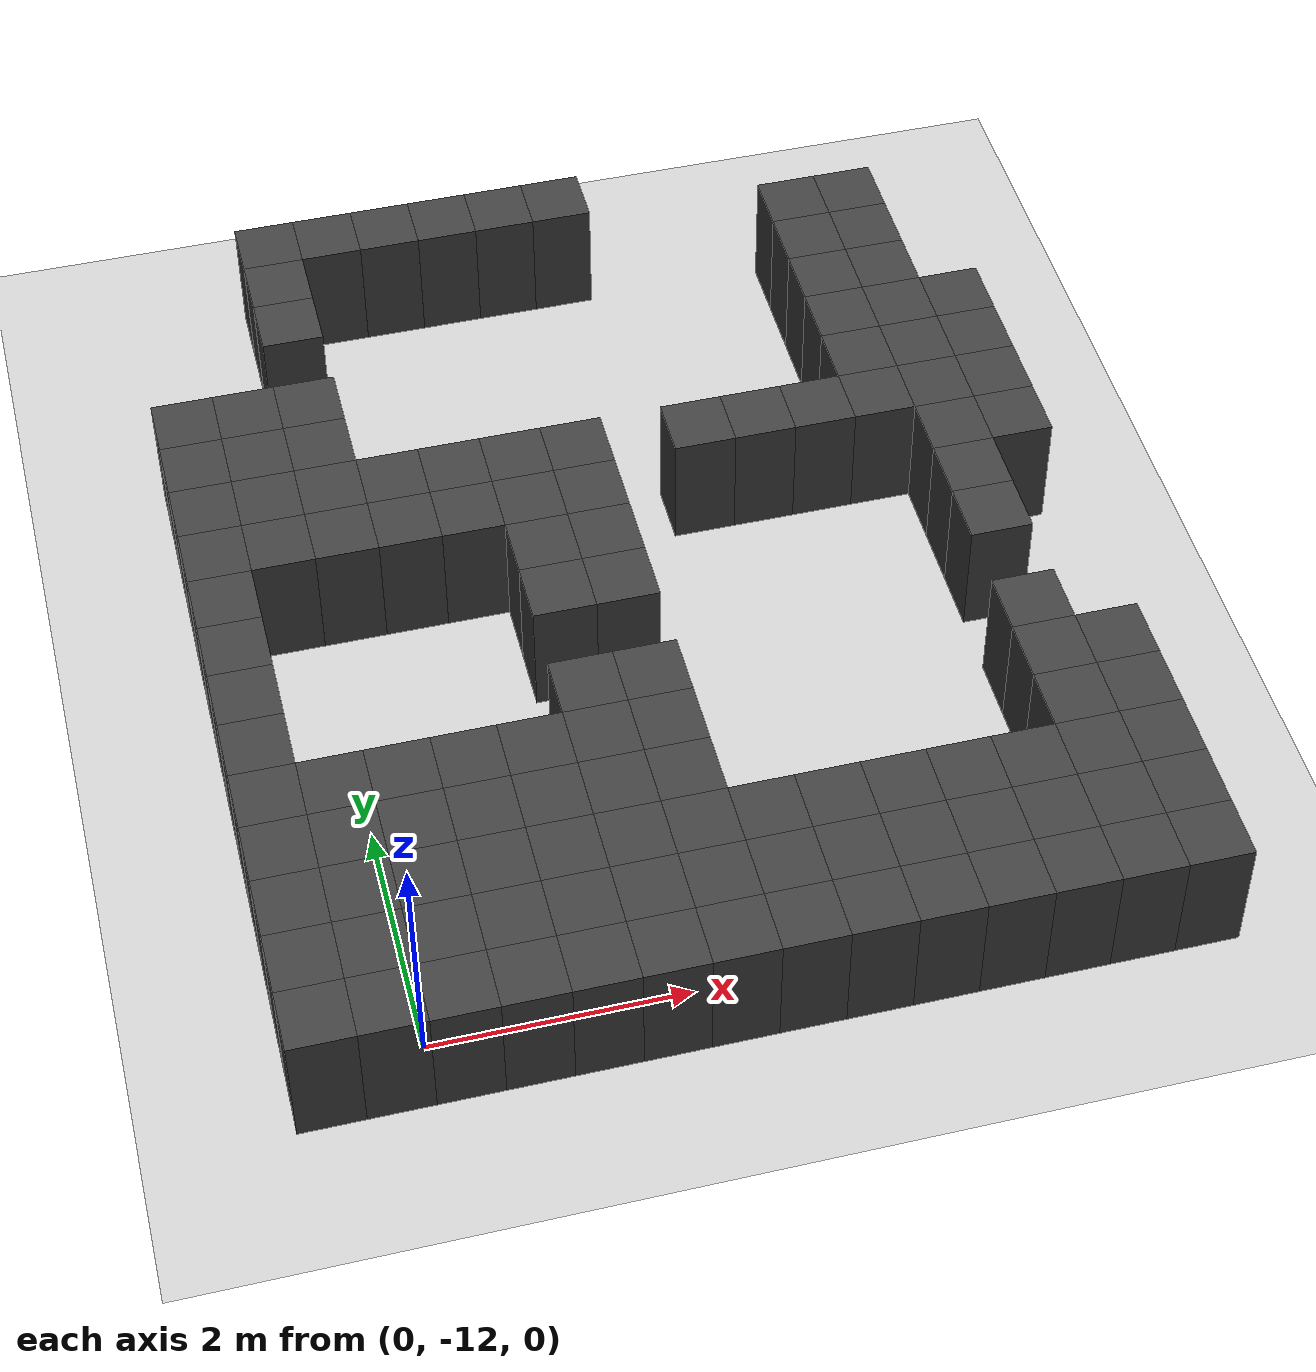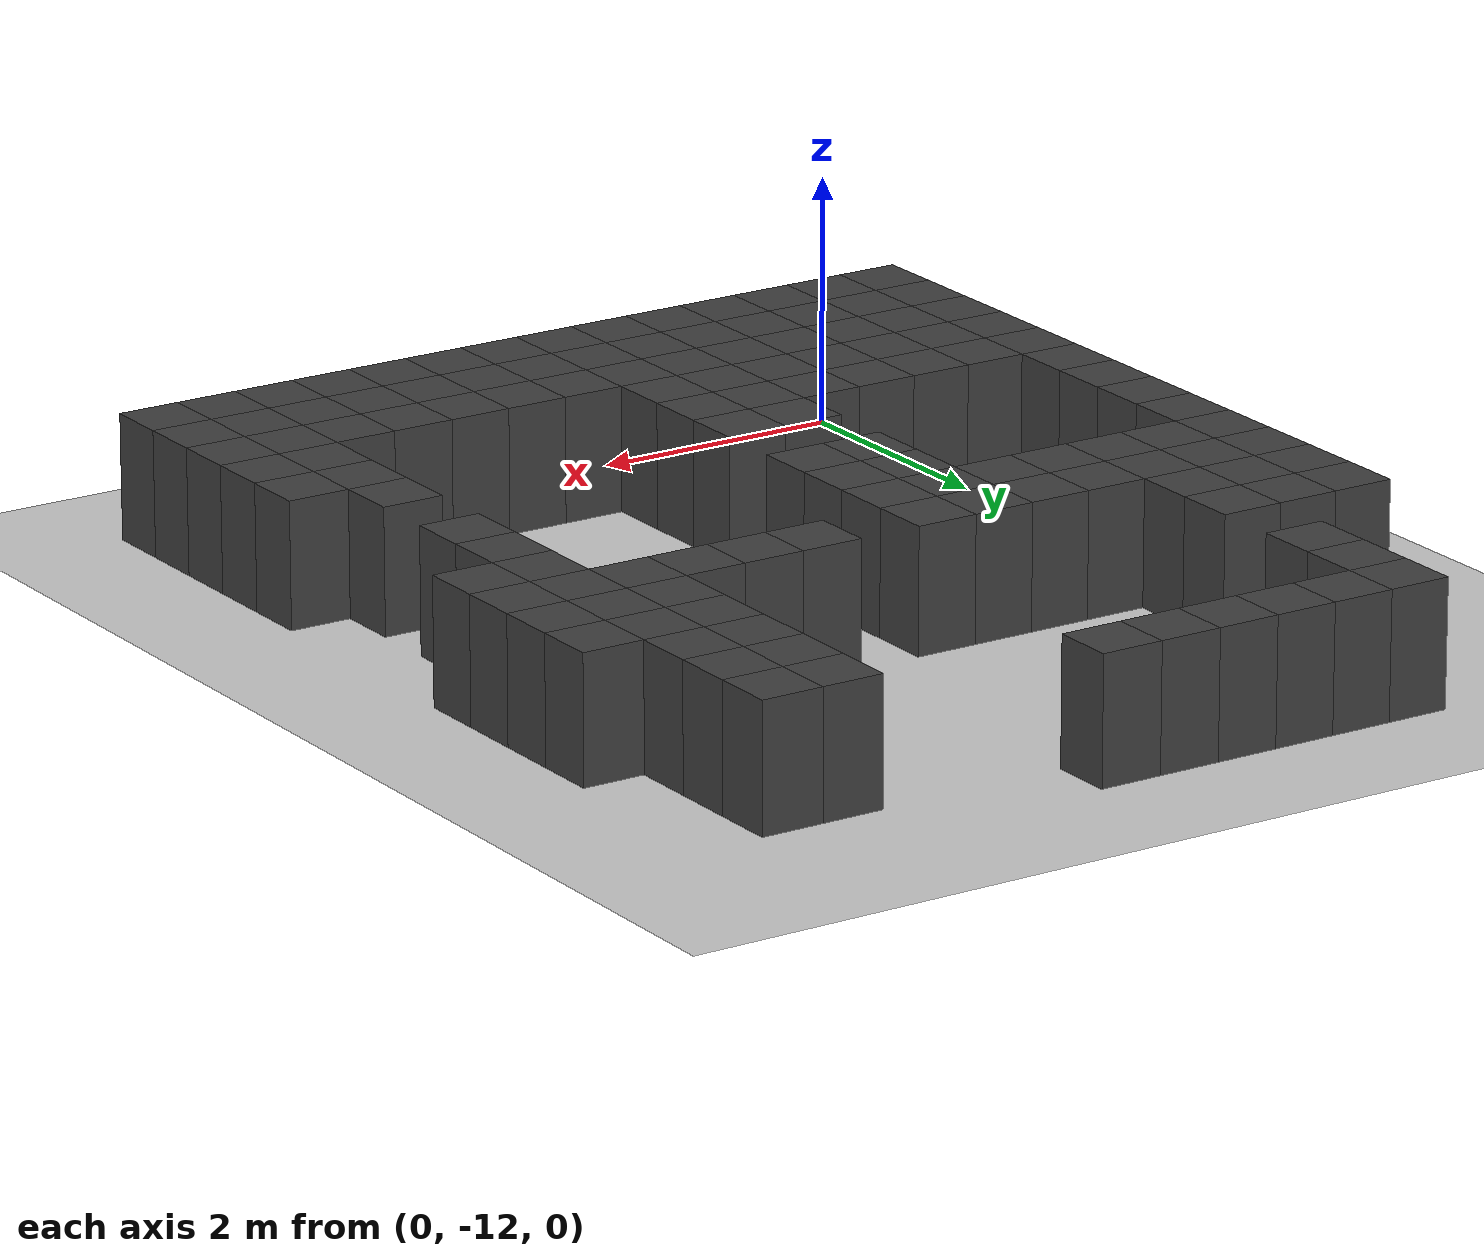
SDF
<sdf version="1.7">
 <world name="map_12885">
  <model name="ground_plane">
   <static>true</static>
   <link name="link">
    <collision name="collision">
     <geometry><plane><normal>0 0 1</normal><size>200 200</size></plane></geometry>
    </collision>
    <visual name="visual">
     <geometry><plane><normal>0 0 1</normal><size>200 200</size></plane></geometry>
     <material><ambient>0.8 0.8 0.8 1</ambient><diffuse>0.8 0.8 0.8 1</diffuse></material>
    </visual>
   </link>
  </model>
  <model name="maze_environment">
   <static>true</static>
   <link name="wall_1374">
    <pose>0.250 -4.250 0.500 0 0 0</pose>
    <collision name="col"><geometry><box><size>0.5 0.5 1.0</size></box></geometry></collision>
    <visual name="vis">
     <geometry><box><size>0.5 0.5 1.0</size></box></geometry>
     <material><ambient>0.15 0.15 0.15 1</ambient><diffuse>0.25 0.25 0.25 1</diffuse></material>
    </visual>
   </link>
   <link name="wall_1375">
    <pose>0.750 -4.250 0.500 0 0 0</pose>
    <collision name="col"><geometry><box><size>0.5 0.5 1.0</size></box></geometry></collision>
    <visual name="vis">
     <geometry><box><size>0.5 0.5 1.0</size></box></geometry>
     <material><ambient>0.15 0.15 0.15 1</ambient><diffuse>0.25 0.25 0.25 1</diffuse></material>
    </visual>
   </link>
   <link name="wall_1376">
    <pose>1.250 -4.250 0.500 0 0 0</pose>
    <collision name="col"><geometry><box><size>0.5 0.5 1.0</size></box></geometry></collision>
    <visual name="vis">
     <geometry><box><size>0.5 0.5 1.0</size></box></geometry>
     <material><ambient>0.15 0.15 0.15 1</ambient><diffuse>0.25 0.25 0.25 1</diffuse></material>
    </visual>
   </link>
   <link name="wall_1377">
    <pose>1.750 -4.250 0.500 0 0 0</pose>
    <collision name="col"><geometry><box><size>0.5 0.5 1.0</size></box></geometry></collision>
    <visual name="vis">
     <geometry><box><size>0.5 0.5 1.0</size></box></geometry>
     <material><ambient>0.15 0.15 0.15 1</ambient><diffuse>0.25 0.25 0.25 1</diffuse></material>
    </visual>
   </link>
   <link name="wall_1378">
    <pose>2.250 -4.250 0.500 0 0 0</pose>
    <collision name="col"><geometry><box><size>0.5 0.5 1.0</size></box></geometry></collision>
    <visual name="vis">
     <geometry><box><size>0.5 0.5 1.0</size></box></geometry>
     <material><ambient>0.15 0.15 0.15 1</ambient><diffuse>0.25 0.25 0.25 1</diffuse></material>
    </visual>
   </link>
   <link name="wall_1379">
    <pose>2.750 -4.250 0.500 0 0 0</pose>
    <collision name="col"><geometry><box><size>0.5 0.5 1.0</size></box></geometry></collision>
    <visual name="vis">
     <geometry><box><size>0.5 0.5 1.0</size></box></geometry>
     <material><ambient>0.15 0.15 0.15 1</ambient><diffuse>0.25 0.25 0.25 1</diffuse></material>
    </visual>
   </link>
   <link name="wall_1410">
    <pose>0.250 -4.750 0.500 0 0 0</pose>
    <collision name="col"><geometry><box><size>0.5 0.5 1.0</size></box></geometry></collision>
    <visual name="vis">
     <geometry><box><size>0.5 0.5 1.0</size></box></geometry>
     <material><ambient>0.15 0.15 0.15 1</ambient><diffuse>0.25 0.25 0.25 1</diffuse></material>
    </visual>
   </link>
   <link name="wall_1411">
    <pose>4.750 -4.750 0.500 0 0 0</pose>
    <collision name="col"><geometry><box><size>0.5 0.5 1.0</size></box></geometry></collision>
    <visual name="vis">
     <geometry><box><size>0.5 0.5 1.0</size></box></geometry>
     <material><ambient>0.15 0.15 0.15 1</ambient><diffuse>0.25 0.25 0.25 1</diffuse></material>
    </visual>
   </link>
   <link name="wall_1412">
    <pose>5.250 -4.750 0.500 0 0 0</pose>
    <collision name="col"><geometry><box><size>0.5 0.5 1.0</size></box></geometry></collision>
    <visual name="vis">
     <geometry><box><size>0.5 0.5 1.0</size></box></geometry>
     <material><ambient>0.15 0.15 0.15 1</ambient><diffuse>0.25 0.25 0.25 1</diffuse></material>
    </visual>
   </link>
   <link name="wall_1438">
    <pose>0.250 -5.250 0.500 0 0 0</pose>
    <collision name="col"><geometry><box><size>0.5 0.5 1.0</size></box></geometry></collision>
    <visual name="vis">
     <geometry><box><size>0.5 0.5 1.0</size></box></geometry>
     <material><ambient>0.15 0.15 0.15 1</ambient><diffuse>0.25 0.25 0.25 1</diffuse></material>
    </visual>
   </link>
   <link name="wall_1439">
    <pose>4.750 -5.250 0.500 0 0 0</pose>
    <collision name="col"><geometry><box><size>0.5 0.5 1.0</size></box></geometry></collision>
    <visual name="vis">
     <geometry><box><size>0.5 0.5 1.0</size></box></geometry>
     <material><ambient>0.15 0.15 0.15 1</ambient><diffuse>0.25 0.25 0.25 1</diffuse></material>
    </visual>
   </link>
   <link name="wall_1440">
    <pose>5.250 -5.250 0.500 0 0 0</pose>
    <collision name="col"><geometry><box><size>0.5 0.5 1.0</size></box></geometry></collision>
    <visual name="vis">
     <geometry><box><size>0.5 0.5 1.0</size></box></geometry>
     <material><ambient>0.15 0.15 0.15 1</ambient><diffuse>0.25 0.25 0.25 1</diffuse></material>
    </visual>
   </link>
   <link name="wall_1466">
    <pose>4.750 -5.750 0.500 0 0 0</pose>
    <collision name="col"><geometry><box><size>0.5 0.5 1.0</size></box></geometry></collision>
    <visual name="vis">
     <geometry><box><size>0.5 0.5 1.0</size></box></geometry>
     <material><ambient>0.15 0.15 0.15 1</ambient><diffuse>0.25 0.25 0.25 1</diffuse></material>
    </visual>
   </link>
   <link name="wall_1467">
    <pose>5.250 -5.750 0.500 0 0 0</pose>
    <collision name="col"><geometry><box><size>0.5 0.5 1.0</size></box></geometry></collision>
    <visual name="vis">
     <geometry><box><size>0.5 0.5 1.0</size></box></geometry>
     <material><ambient>0.15 0.15 0.15 1</ambient><diffuse>0.25 0.25 0.25 1</diffuse></material>
    </visual>
   </link>
   <link name="wall_1496">
    <pose>-0.750 -6.250 0.500 0 0 0</pose>
    <collision name="col"><geometry><box><size>0.5 0.5 1.0</size></box></geometry></collision>
    <visual name="vis">
     <geometry><box><size>0.5 0.5 1.0</size></box></geometry>
     <material><ambient>0.15 0.15 0.15 1</ambient><diffuse>0.25 0.25 0.25 1</diffuse></material>
    </visual>
   </link>
   <link name="wall_1497">
    <pose>-0.250 -6.250 0.500 0 0 0</pose>
    <collision name="col"><geometry><box><size>0.5 0.5 1.0</size></box></geometry></collision>
    <visual name="vis">
     <geometry><box><size>0.5 0.5 1.0</size></box></geometry>
     <material><ambient>0.15 0.15 0.15 1</ambient><diffuse>0.25 0.25 0.25 1</diffuse></material>
    </visual>
   </link>
   <link name="wall_1498">
    <pose>0.250 -6.250 0.500 0 0 0</pose>
    <collision name="col"><geometry><box><size>0.5 0.5 1.0</size></box></geometry></collision>
    <visual name="vis">
     <geometry><box><size>0.5 0.5 1.0</size></box></geometry>
     <material><ambient>0.15 0.15 0.15 1</ambient><diffuse>0.25 0.25 0.25 1</diffuse></material>
    </visual>
   </link>
   <link name="wall_1499">
    <pose>4.750 -6.250 0.500 0 0 0</pose>
    <collision name="col"><geometry><box><size>0.5 0.5 1.0</size></box></geometry></collision>
    <visual name="vis">
     <geometry><box><size>0.5 0.5 1.0</size></box></geometry>
     <material><ambient>0.15 0.15 0.15 1</ambient><diffuse>0.25 0.25 0.25 1</diffuse></material>
    </visual>
   </link>
   <link name="wall_1500">
    <pose>5.250 -6.250 0.500 0 0 0</pose>
    <collision name="col"><geometry><box><size>0.5 0.5 1.0</size></box></geometry></collision>
    <visual name="vis">
     <geometry><box><size>0.5 0.5 1.0</size></box></geometry>
     <material><ambient>0.15 0.15 0.15 1</ambient><diffuse>0.25 0.25 0.25 1</diffuse></material>
    </visual>
   </link>
   <link name="wall_1501">
    <pose>5.750 -6.250 0.500 0 0 0</pose>
    <collision name="col"><geometry><box><size>0.5 0.5 1.0</size></box></geometry></collision>
    <visual name="vis">
     <geometry><box><size>0.5 0.5 1.0</size></box></geometry>
     <material><ambient>0.15 0.15 0.15 1</ambient><diffuse>0.25 0.25 0.25 1</diffuse></material>
    </visual>
   </link>
   <link name="wall_1527">
    <pose>-0.750 -6.750 0.500 0 0 0</pose>
    <collision name="col"><geometry><box><size>0.5 0.5 1.0</size></box></geometry></collision>
    <visual name="vis">
     <geometry><box><size>0.5 0.5 1.0</size></box></geometry>
     <material><ambient>0.15 0.15 0.15 1</ambient><diffuse>0.25 0.25 0.25 1</diffuse></material>
    </visual>
   </link>
   <link name="wall_1528">
    <pose>-0.250 -6.750 0.500 0 0 0</pose>
    <collision name="col"><geometry><box><size>0.5 0.5 1.0</size></box></geometry></collision>
    <visual name="vis">
     <geometry><box><size>0.5 0.5 1.0</size></box></geometry>
     <material><ambient>0.15 0.15 0.15 1</ambient><diffuse>0.25 0.25 0.25 1</diffuse></material>
    </visual>
   </link>
   <link name="wall_1529">
    <pose>0.250 -6.750 0.500 0 0 0</pose>
    <collision name="col"><geometry><box><size>0.5 0.5 1.0</size></box></geometry></collision>
    <visual name="vis">
     <geometry><box><size>0.5 0.5 1.0</size></box></geometry>
     <material><ambient>0.15 0.15 0.15 1</ambient><diffuse>0.25 0.25 0.25 1</diffuse></material>
    </visual>
   </link>
   <link name="wall_1530">
    <pose>4.750 -6.750 0.500 0 0 0</pose>
    <collision name="col"><geometry><box><size>0.5 0.5 1.0</size></box></geometry></collision>
    <visual name="vis">
     <geometry><box><size>0.5 0.5 1.0</size></box></geometry>
     <material><ambient>0.15 0.15 0.15 1</ambient><diffuse>0.25 0.25 0.25 1</diffuse></material>
    </visual>
   </link>
   <link name="wall_1531">
    <pose>5.250 -6.750 0.500 0 0 0</pose>
    <collision name="col"><geometry><box><size>0.5 0.5 1.0</size></box></geometry></collision>
    <visual name="vis">
     <geometry><box><size>0.5 0.5 1.0</size></box></geometry>
     <material><ambient>0.15 0.15 0.15 1</ambient><diffuse>0.25 0.25 0.25 1</diffuse></material>
    </visual>
   </link>
   <link name="wall_1532">
    <pose>5.750 -6.750 0.500 0 0 0</pose>
    <collision name="col"><geometry><box><size>0.5 0.5 1.0</size></box></geometry></collision>
    <visual name="vis">
     <geometry><box><size>0.5 0.5 1.0</size></box></geometry>
     <material><ambient>0.15 0.15 0.15 1</ambient><diffuse>0.25 0.25 0.25 1</diffuse></material>
    </visual>
   </link>
   <link name="wall_1561">
    <pose>-0.750 -7.250 0.500 0 0 0</pose>
    <collision name="col"><geometry><box><size>0.5 0.5 1.0</size></box></geometry></collision>
    <visual name="vis">
     <geometry><box><size>0.5 0.5 1.0</size></box></geometry>
     <material><ambient>0.15 0.15 0.15 1</ambient><diffuse>0.25 0.25 0.25 1</diffuse></material>
    </visual>
   </link>
   <link name="wall_1562">
    <pose>-0.250 -7.250 0.500 0 0 0</pose>
    <collision name="col"><geometry><box><size>0.5 0.5 1.0</size></box></geometry></collision>
    <visual name="vis">
     <geometry><box><size>0.5 0.5 1.0</size></box></geometry>
     <material><ambient>0.15 0.15 0.15 1</ambient><diffuse>0.25 0.25 0.25 1</diffuse></material>
    </visual>
   </link>
   <link name="wall_1563">
    <pose>0.250 -7.250 0.500 0 0 0</pose>
    <collision name="col"><geometry><box><size>0.5 0.5 1.0</size></box></geometry></collision>
    <visual name="vis">
     <geometry><box><size>0.5 0.5 1.0</size></box></geometry>
     <material><ambient>0.15 0.15 0.15 1</ambient><diffuse>0.25 0.25 0.25 1</diffuse></material>
    </visual>
   </link>
   <link name="wall_1564">
    <pose>0.750 -7.250 0.500 0 0 0</pose>
    <collision name="col"><geometry><box><size>0.5 0.5 1.0</size></box></geometry></collision>
    <visual name="vis">
     <geometry><box><size>0.5 0.5 1.0</size></box></geometry>
     <material><ambient>0.15 0.15 0.15 1</ambient><diffuse>0.25 0.25 0.25 1</diffuse></material>
    </visual>
   </link>
   <link name="wall_1565">
    <pose>1.250 -7.250 0.500 0 0 0</pose>
    <collision name="col"><geometry><box><size>0.5 0.5 1.0</size></box></geometry></collision>
    <visual name="vis">
     <geometry><box><size>0.5 0.5 1.0</size></box></geometry>
     <material><ambient>0.15 0.15 0.15 1</ambient><diffuse>0.25 0.25 0.25 1</diffuse></material>
    </visual>
   </link>
   <link name="wall_1566">
    <pose>1.750 -7.250 0.500 0 0 0</pose>
    <collision name="col"><geometry><box><size>0.5 0.5 1.0</size></box></geometry></collision>
    <visual name="vis">
     <geometry><box><size>0.5 0.5 1.0</size></box></geometry>
     <material><ambient>0.15 0.15 0.15 1</ambient><diffuse>0.25 0.25 0.25 1</diffuse></material>
    </visual>
   </link>
   <link name="wall_1567">
    <pose>2.250 -7.250 0.500 0 0 0</pose>
    <collision name="col"><geometry><box><size>0.5 0.5 1.0</size></box></geometry></collision>
    <visual name="vis">
     <geometry><box><size>0.5 0.5 1.0</size></box></geometry>
     <material><ambient>0.15 0.15 0.15 1</ambient><diffuse>0.25 0.25 0.25 1</diffuse></material>
    </visual>
   </link>
   <link name="wall_1568">
    <pose>3.250 -7.250 0.500 0 0 0</pose>
    <collision name="col"><geometry><box><size>0.5 0.5 1.0</size></box></geometry></collision>
    <visual name="vis">
     <geometry><box><size>0.5 0.5 1.0</size></box></geometry>
     <material><ambient>0.15 0.15 0.15 1</ambient><diffuse>0.25 0.25 0.25 1</diffuse></material>
    </visual>
   </link>
   <link name="wall_1569">
    <pose>3.750 -7.250 0.500 0 0 0</pose>
    <collision name="col"><geometry><box><size>0.5 0.5 1.0</size></box></geometry></collision>
    <visual name="vis">
     <geometry><box><size>0.5 0.5 1.0</size></box></geometry>
     <material><ambient>0.15 0.15 0.15 1</ambient><diffuse>0.25 0.25 0.25 1</diffuse></material>
    </visual>
   </link>
   <link name="wall_1570">
    <pose>4.250 -7.250 0.500 0 0 0</pose>
    <collision name="col"><geometry><box><size>0.5 0.5 1.0</size></box></geometry></collision>
    <visual name="vis">
     <geometry><box><size>0.5 0.5 1.0</size></box></geometry>
     <material><ambient>0.15 0.15 0.15 1</ambient><diffuse>0.25 0.25 0.25 1</diffuse></material>
    </visual>
   </link>
   <link name="wall_1571">
    <pose>4.750 -7.250 0.500 0 0 0</pose>
    <collision name="col"><geometry><box><size>0.5 0.5 1.0</size></box></geometry></collision>
    <visual name="vis">
     <geometry><box><size>0.5 0.5 1.0</size></box></geometry>
     <material><ambient>0.15 0.15 0.15 1</ambient><diffuse>0.25 0.25 0.25 1</diffuse></material>
    </visual>
   </link>
   <link name="wall_1572">
    <pose>5.250 -7.250 0.500 0 0 0</pose>
    <collision name="col"><geometry><box><size>0.5 0.5 1.0</size></box></geometry></collision>
    <visual name="vis">
     <geometry><box><size>0.5 0.5 1.0</size></box></geometry>
     <material><ambient>0.15 0.15 0.15 1</ambient><diffuse>0.25 0.25 0.25 1</diffuse></material>
    </visual>
   </link>
   <link name="wall_1573">
    <pose>5.750 -7.250 0.500 0 0 0</pose>
    <collision name="col"><geometry><box><size>0.5 0.5 1.0</size></box></geometry></collision>
    <visual name="vis">
     <geometry><box><size>0.5 0.5 1.0</size></box></geometry>
     <material><ambient>0.15 0.15 0.15 1</ambient><diffuse>0.25 0.25 0.25 1</diffuse></material>
    </visual>
   </link>
   <link name="wall_1595">
    <pose>-0.750 -7.750 0.500 0 0 0</pose>
    <collision name="col"><geometry><box><size>0.5 0.5 1.0</size></box></geometry></collision>
    <visual name="vis">
     <geometry><box><size>0.5 0.5 1.0</size></box></geometry>
     <material><ambient>0.15 0.15 0.15 1</ambient><diffuse>0.25 0.25 0.25 1</diffuse></material>
    </visual>
   </link>
   <link name="wall_1596">
    <pose>-0.250 -7.750 0.500 0 0 0</pose>
    <collision name="col"><geometry><box><size>0.5 0.5 1.0</size></box></geometry></collision>
    <visual name="vis">
     <geometry><box><size>0.5 0.5 1.0</size></box></geometry>
     <material><ambient>0.15 0.15 0.15 1</ambient><diffuse>0.25 0.25 0.25 1</diffuse></material>
    </visual>
   </link>
   <link name="wall_1597">
    <pose>0.250 -7.750 0.500 0 0 0</pose>
    <collision name="col"><geometry><box><size>0.5 0.5 1.0</size></box></geometry></collision>
    <visual name="vis">
     <geometry><box><size>0.5 0.5 1.0</size></box></geometry>
     <material><ambient>0.15 0.15 0.15 1</ambient><diffuse>0.25 0.25 0.25 1</diffuse></material>
    </visual>
   </link>
   <link name="wall_1598">
    <pose>0.750 -7.750 0.500 0 0 0</pose>
    <collision name="col"><geometry><box><size>0.5 0.5 1.0</size></box></geometry></collision>
    <visual name="vis">
     <geometry><box><size>0.5 0.5 1.0</size></box></geometry>
     <material><ambient>0.15 0.15 0.15 1</ambient><diffuse>0.25 0.25 0.25 1</diffuse></material>
    </visual>
   </link>
   <link name="wall_1599">
    <pose>1.250 -7.750 0.500 0 0 0</pose>
    <collision name="col"><geometry><box><size>0.5 0.5 1.0</size></box></geometry></collision>
    <visual name="vis">
     <geometry><box><size>0.5 0.5 1.0</size></box></geometry>
     <material><ambient>0.15 0.15 0.15 1</ambient><diffuse>0.25 0.25 0.25 1</diffuse></material>
    </visual>
   </link>
   <link name="wall_1600">
    <pose>1.750 -7.750 0.500 0 0 0</pose>
    <collision name="col"><geometry><box><size>0.5 0.5 1.0</size></box></geometry></collision>
    <visual name="vis">
     <geometry><box><size>0.5 0.5 1.0</size></box></geometry>
     <material><ambient>0.15 0.15 0.15 1</ambient><diffuse>0.25 0.25 0.25 1</diffuse></material>
    </visual>
   </link>
   <link name="wall_1601">
    <pose>2.250 -7.750 0.500 0 0 0</pose>
    <collision name="col"><geometry><box><size>0.5 0.5 1.0</size></box></geometry></collision>
    <visual name="vis">
     <geometry><box><size>0.5 0.5 1.0</size></box></geometry>
     <material><ambient>0.15 0.15 0.15 1</ambient><diffuse>0.25 0.25 0.25 1</diffuse></material>
    </visual>
   </link>
   <link name="wall_1602">
    <pose>5.250 -7.750 0.500 0 0 0</pose>
    <collision name="col"><geometry><box><size>0.5 0.5 1.0</size></box></geometry></collision>
    <visual name="vis">
     <geometry><box><size>0.5 0.5 1.0</size></box></geometry>
     <material><ambient>0.15 0.15 0.15 1</ambient><diffuse>0.25 0.25 0.25 1</diffuse></material>
    </visual>
   </link>
   <link name="wall_1603">
    <pose>5.750 -7.750 0.500 0 0 0</pose>
    <collision name="col"><geometry><box><size>0.5 0.5 1.0</size></box></geometry></collision>
    <visual name="vis">
     <geometry><box><size>0.5 0.5 1.0</size></box></geometry>
     <material><ambient>0.15 0.15 0.15 1</ambient><diffuse>0.25 0.25 0.25 1</diffuse></material>
    </visual>
   </link>
   <link name="wall_1625">
    <pose>-0.750 -8.250 0.500 0 0 0</pose>
    <collision name="col"><geometry><box><size>0.5 0.5 1.0</size></box></geometry></collision>
    <visual name="vis">
     <geometry><box><size>0.5 0.5 1.0</size></box></geometry>
     <material><ambient>0.15 0.15 0.15 1</ambient><diffuse>0.25 0.25 0.25 1</diffuse></material>
    </visual>
   </link>
   <link name="wall_1626">
    <pose>1.750 -8.250 0.500 0 0 0</pose>
    <collision name="col"><geometry><box><size>0.5 0.5 1.0</size></box></geometry></collision>
    <visual name="vis">
     <geometry><box><size>0.5 0.5 1.0</size></box></geometry>
     <material><ambient>0.15 0.15 0.15 1</ambient><diffuse>0.25 0.25 0.25 1</diffuse></material>
    </visual>
   </link>
   <link name="wall_1627">
    <pose>2.250 -8.250 0.500 0 0 0</pose>
    <collision name="col"><geometry><box><size>0.5 0.5 1.0</size></box></geometry></collision>
    <visual name="vis">
     <geometry><box><size>0.5 0.5 1.0</size></box></geometry>
     <material><ambient>0.15 0.15 0.15 1</ambient><diffuse>0.25 0.25 0.25 1</diffuse></material>
    </visual>
   </link>
   <link name="wall_1628">
    <pose>5.250 -8.250 0.500 0 0 0</pose>
    <collision name="col"><geometry><box><size>0.5 0.5 1.0</size></box></geometry></collision>
    <visual name="vis">
     <geometry><box><size>0.5 0.5 1.0</size></box></geometry>
     <material><ambient>0.15 0.15 0.15 1</ambient><diffuse>0.25 0.25 0.25 1</diffuse></material>
    </visual>
   </link>
   <link name="wall_1653">
    <pose>-0.750 -8.750 0.500 0 0 0</pose>
    <collision name="col"><geometry><box><size>0.5 0.5 1.0</size></box></geometry></collision>
    <visual name="vis">
     <geometry><box><size>0.5 0.5 1.0</size></box></geometry>
     <material><ambient>0.15 0.15 0.15 1</ambient><diffuse>0.25 0.25 0.25 1</diffuse></material>
    </visual>
   </link>
   <link name="wall_1654">
    <pose>1.750 -8.750 0.500 0 0 0</pose>
    <collision name="col"><geometry><box><size>0.5 0.5 1.0</size></box></geometry></collision>
    <visual name="vis">
     <geometry><box><size>0.5 0.5 1.0</size></box></geometry>
     <material><ambient>0.15 0.15 0.15 1</ambient><diffuse>0.25 0.25 0.25 1</diffuse></material>
    </visual>
   </link>
   <link name="wall_1655">
    <pose>2.250 -8.750 0.500 0 0 0</pose>
    <collision name="col"><geometry><box><size>0.5 0.5 1.0</size></box></geometry></collision>
    <visual name="vis">
     <geometry><box><size>0.5 0.5 1.0</size></box></geometry>
     <material><ambient>0.15 0.15 0.15 1</ambient><diffuse>0.25 0.25 0.25 1</diffuse></material>
    </visual>
   </link>
   <link name="wall_1656">
    <pose>5.250 -8.750 0.500 0 0 0</pose>
    <collision name="col"><geometry><box><size>0.5 0.5 1.0</size></box></geometry></collision>
    <visual name="vis">
     <geometry><box><size>0.5 0.5 1.0</size></box></geometry>
     <material><ambient>0.15 0.15 0.15 1</ambient><diffuse>0.25 0.25 0.25 1</diffuse></material>
    </visual>
   </link>
   <link name="wall_1681">
    <pose>-0.750 -9.250 0.500 0 0 0</pose>
    <collision name="col"><geometry><box><size>0.5 0.5 1.0</size></box></geometry></collision>
    <visual name="vis">
     <geometry><box><size>0.5 0.5 1.0</size></box></geometry>
     <material><ambient>0.15 0.15 0.15 1</ambient><diffuse>0.25 0.25 0.25 1</diffuse></material>
    </visual>
   </link>
   <link name="wall_1706">
    <pose>-0.750 -9.750 0.500 0 0 0</pose>
    <collision name="col"><geometry><box><size>0.5 0.5 1.0</size></box></geometry></collision>
    <visual name="vis">
     <geometry><box><size>0.5 0.5 1.0</size></box></geometry>
     <material><ambient>0.15 0.15 0.15 1</ambient><diffuse>0.25 0.25 0.25 1</diffuse></material>
    </visual>
   </link>
   <link name="wall_1707">
    <pose>1.750 -9.750 0.500 0 0 0</pose>
    <collision name="col"><geometry><box><size>0.5 0.5 1.0</size></box></geometry></collision>
    <visual name="vis">
     <geometry><box><size>0.5 0.5 1.0</size></box></geometry>
     <material><ambient>0.15 0.15 0.15 1</ambient><diffuse>0.25 0.25 0.25 1</diffuse></material>
    </visual>
   </link>
   <link name="wall_1708">
    <pose>2.250 -9.750 0.500 0 0 0</pose>
    <collision name="col"><geometry><box><size>0.5 0.5 1.0</size></box></geometry></collision>
    <visual name="vis">
     <geometry><box><size>0.5 0.5 1.0</size></box></geometry>
     <material><ambient>0.15 0.15 0.15 1</ambient><diffuse>0.25 0.25 0.25 1</diffuse></material>
    </visual>
   </link>
   <link name="wall_1709">
    <pose>5.250 -9.750 0.500 0 0 0</pose>
    <collision name="col"><geometry><box><size>0.5 0.5 1.0</size></box></geometry></collision>
    <visual name="vis">
     <geometry><box><size>0.5 0.5 1.0</size></box></geometry>
     <material><ambient>0.15 0.15 0.15 1</ambient><diffuse>0.25 0.25 0.25 1</diffuse></material>
    </visual>
   </link>
   <link name="wall_1734">
    <pose>-0.750 -10.250 0.500 0 0 0</pose>
    <collision name="col"><geometry><box><size>0.5 0.5 1.0</size></box></geometry></collision>
    <visual name="vis">
     <geometry><box><size>0.5 0.5 1.0</size></box></geometry>
     <material><ambient>0.15 0.15 0.15 1</ambient><diffuse>0.25 0.25 0.25 1</diffuse></material>
    </visual>
   </link>
   <link name="wall_1735">
    <pose>-0.250 -10.250 0.500 0 0 0</pose>
    <collision name="col"><geometry><box><size>0.5 0.5 1.0</size></box></geometry></collision>
    <visual name="vis">
     <geometry><box><size>0.5 0.5 1.0</size></box></geometry>
     <material><ambient>0.15 0.15 0.15 1</ambient><diffuse>0.25 0.25 0.25 1</diffuse></material>
    </visual>
   </link>
   <link name="wall_1736">
    <pose>0.250 -10.250 0.500 0 0 0</pose>
    <collision name="col"><geometry><box><size>0.5 0.5 1.0</size></box></geometry></collision>
    <visual name="vis">
     <geometry><box><size>0.5 0.5 1.0</size></box></geometry>
     <material><ambient>0.15 0.15 0.15 1</ambient><diffuse>0.25 0.25 0.25 1</diffuse></material>
    </visual>
   </link>
   <link name="wall_1737">
    <pose>0.750 -10.250 0.500 0 0 0</pose>
    <collision name="col"><geometry><box><size>0.5 0.5 1.0</size></box></geometry></collision>
    <visual name="vis">
     <geometry><box><size>0.5 0.5 1.0</size></box></geometry>
     <material><ambient>0.15 0.15 0.15 1</ambient><diffuse>0.25 0.25 0.25 1</diffuse></material>
    </visual>
   </link>
   <link name="wall_1738">
    <pose>1.250 -10.250 0.500 0 0 0</pose>
    <collision name="col"><geometry><box><size>0.5 0.5 1.0</size></box></geometry></collision>
    <visual name="vis">
     <geometry><box><size>0.5 0.5 1.0</size></box></geometry>
     <material><ambient>0.15 0.15 0.15 1</ambient><diffuse>0.25 0.25 0.25 1</diffuse></material>
    </visual>
   </link>
   <link name="wall_1739">
    <pose>1.750 -10.250 0.500 0 0 0</pose>
    <collision name="col"><geometry><box><size>0.5 0.5 1.0</size></box></geometry></collision>
    <visual name="vis">
     <geometry><box><size>0.5 0.5 1.0</size></box></geometry>
     <material><ambient>0.15 0.15 0.15 1</ambient><diffuse>0.25 0.25 0.25 1</diffuse></material>
    </visual>
   </link>
   <link name="wall_1740">
    <pose>2.250 -10.250 0.500 0 0 0</pose>
    <collision name="col"><geometry><box><size>0.5 0.5 1.0</size></box></geometry></collision>
    <visual name="vis">
     <geometry><box><size>0.5 0.5 1.0</size></box></geometry>
     <material><ambient>0.15 0.15 0.15 1</ambient><diffuse>0.25 0.25 0.25 1</diffuse></material>
    </visual>
   </link>
   <link name="wall_1741">
    <pose>5.250 -10.250 0.500 0 0 0</pose>
    <collision name="col"><geometry><box><size>0.5 0.5 1.0</size></box></geometry></collision>
    <visual name="vis">
     <geometry><box><size>0.5 0.5 1.0</size></box></geometry>
     <material><ambient>0.15 0.15 0.15 1</ambient><diffuse>0.25 0.25 0.25 1</diffuse></material>
    </visual>
   </link>
   <link name="wall_1742">
    <pose>5.750 -10.250 0.500 0 0 0</pose>
    <collision name="col"><geometry><box><size>0.5 0.5 1.0</size></box></geometry></collision>
    <visual name="vis">
     <geometry><box><size>0.5 0.5 1.0</size></box></geometry>
     <material><ambient>0.15 0.15 0.15 1</ambient><diffuse>0.25 0.25 0.25 1</diffuse></material>
    </visual>
   </link>
   <link name="wall_1771">
    <pose>-0.750 -10.750 0.500 0 0 0</pose>
    <collision name="col"><geometry><box><size>0.5 0.5 1.0</size></box></geometry></collision>
    <visual name="vis">
     <geometry><box><size>0.5 0.5 1.0</size></box></geometry>
     <material><ambient>0.15 0.15 0.15 1</ambient><diffuse>0.25 0.25 0.25 1</diffuse></material>
    </visual>
   </link>
   <link name="wall_1772">
    <pose>-0.250 -10.750 0.500 0 0 0</pose>
    <collision name="col"><geometry><box><size>0.5 0.5 1.0</size></box></geometry></collision>
    <visual name="vis">
     <geometry><box><size>0.5 0.5 1.0</size></box></geometry>
     <material><ambient>0.15 0.15 0.15 1</ambient><diffuse>0.25 0.25 0.25 1</diffuse></material>
    </visual>
   </link>
   <link name="wall_1773">
    <pose>0.250 -10.750 0.500 0 0 0</pose>
    <collision name="col"><geometry><box><size>0.5 0.5 1.0</size></box></geometry></collision>
    <visual name="vis">
     <geometry><box><size>0.5 0.5 1.0</size></box></geometry>
     <material><ambient>0.15 0.15 0.15 1</ambient><diffuse>0.25 0.25 0.25 1</diffuse></material>
    </visual>
   </link>
   <link name="wall_1774">
    <pose>0.750 -10.750 0.500 0 0 0</pose>
    <collision name="col"><geometry><box><size>0.5 0.5 1.0</size></box></geometry></collision>
    <visual name="vis">
     <geometry><box><size>0.5 0.5 1.0</size></box></geometry>
     <material><ambient>0.15 0.15 0.15 1</ambient><diffuse>0.25 0.25 0.25 1</diffuse></material>
    </visual>
   </link>
   <link name="wall_1775">
    <pose>1.250 -10.750 0.500 0 0 0</pose>
    <collision name="col"><geometry><box><size>0.5 0.5 1.0</size></box></geometry></collision>
    <visual name="vis">
     <geometry><box><size>0.5 0.5 1.0</size></box></geometry>
     <material><ambient>0.15 0.15 0.15 1</ambient><diffuse>0.25 0.25 0.25 1</diffuse></material>
    </visual>
   </link>
   <link name="wall_1776">
    <pose>1.750 -10.750 0.500 0 0 0</pose>
    <collision name="col"><geometry><box><size>0.5 0.5 1.0</size></box></geometry></collision>
    <visual name="vis">
     <geometry><box><size>0.5 0.5 1.0</size></box></geometry>
     <material><ambient>0.15 0.15 0.15 1</ambient><diffuse>0.25 0.25 0.25 1</diffuse></material>
    </visual>
   </link>
   <link name="wall_1777">
    <pose>2.250 -10.750 0.500 0 0 0</pose>
    <collision name="col"><geometry><box><size>0.5 0.5 1.0</size></box></geometry></collision>
    <visual name="vis">
     <geometry><box><size>0.5 0.5 1.0</size></box></geometry>
     <material><ambient>0.15 0.15 0.15 1</ambient><diffuse>0.25 0.25 0.25 1</diffuse></material>
    </visual>
   </link>
   <link name="wall_1778">
    <pose>5.250 -10.750 0.500 0 0 0</pose>
    <collision name="col"><geometry><box><size>0.5 0.5 1.0</size></box></geometry></collision>
    <visual name="vis">
     <geometry><box><size>0.5 0.5 1.0</size></box></geometry>
     <material><ambient>0.15 0.15 0.15 1</ambient><diffuse>0.25 0.25 0.25 1</diffuse></material>
    </visual>
   </link>
   <link name="wall_1779">
    <pose>5.750 -10.750 0.500 0 0 0</pose>
    <collision name="col"><geometry><box><size>0.5 0.5 1.0</size></box></geometry></collision>
    <visual name="vis">
     <geometry><box><size>0.5 0.5 1.0</size></box></geometry>
     <material><ambient>0.15 0.15 0.15 1</ambient><diffuse>0.25 0.25 0.25 1</diffuse></material>
    </visual>
   </link>
   <link name="wall_1812">
    <pose>-0.750 -11.250 0.500 0 0 0</pose>
    <collision name="col"><geometry><box><size>0.5 0.5 1.0</size></box></geometry></collision>
    <visual name="vis">
     <geometry><box><size>0.5 0.5 1.0</size></box></geometry>
     <material><ambient>0.15 0.15 0.15 1</ambient><diffuse>0.25 0.25 0.25 1</diffuse></material>
    </visual>
   </link>
   <link name="wall_1813">
    <pose>-0.250 -11.250 0.500 0 0 0</pose>
    <collision name="col"><geometry><box><size>0.5 0.5 1.0</size></box></geometry></collision>
    <visual name="vis">
     <geometry><box><size>0.5 0.5 1.0</size></box></geometry>
     <material><ambient>0.15 0.15 0.15 1</ambient><diffuse>0.25 0.25 0.25 1</diffuse></material>
    </visual>
   </link>
   <link name="wall_1814">
    <pose>0.250 -11.250 0.500 0 0 0</pose>
    <collision name="col"><geometry><box><size>0.5 0.5 1.0</size></box></geometry></collision>
    <visual name="vis">
     <geometry><box><size>0.5 0.5 1.0</size></box></geometry>
     <material><ambient>0.15 0.15 0.15 1</ambient><diffuse>0.25 0.25 0.25 1</diffuse></material>
    </visual>
   </link>
   <link name="wall_1815">
    <pose>0.750 -11.250 0.500 0 0 0</pose>
    <collision name="col"><geometry><box><size>0.5 0.5 1.0</size></box></geometry></collision>
    <visual name="vis">
     <geometry><box><size>0.5 0.5 1.0</size></box></geometry>
     <material><ambient>0.15 0.15 0.15 1</ambient><diffuse>0.25 0.25 0.25 1</diffuse></material>
    </visual>
   </link>
   <link name="wall_1816">
    <pose>1.250 -11.250 0.500 0 0 0</pose>
    <collision name="col"><geometry><box><size>0.5 0.5 1.0</size></box></geometry></collision>
    <visual name="vis">
     <geometry><box><size>0.5 0.5 1.0</size></box></geometry>
     <material><ambient>0.15 0.15 0.15 1</ambient><diffuse>0.25 0.25 0.25 1</diffuse></material>
    </visual>
   </link>
   <link name="wall_1817">
    <pose>1.750 -11.250 0.500 0 0 0</pose>
    <collision name="col"><geometry><box><size>0.5 0.5 1.0</size></box></geometry></collision>
    <visual name="vis">
     <geometry><box><size>0.5 0.5 1.0</size></box></geometry>
     <material><ambient>0.15 0.15 0.15 1</ambient><diffuse>0.25 0.25 0.25 1</diffuse></material>
    </visual>
   </link>
   <link name="wall_1818">
    <pose>2.250 -11.250 0.500 0 0 0</pose>
    <collision name="col"><geometry><box><size>0.5 0.5 1.0</size></box></geometry></collision>
    <visual name="vis">
     <geometry><box><size>0.5 0.5 1.0</size></box></geometry>
     <material><ambient>0.15 0.15 0.15 1</ambient><diffuse>0.25 0.25 0.25 1</diffuse></material>
    </visual>
   </link>
   <link name="wall_1819">
    <pose>2.750 -11.250 0.500 0 0 0</pose>
    <collision name="col"><geometry><box><size>0.5 0.5 1.0</size></box></geometry></collision>
    <visual name="vis">
     <geometry><box><size>0.5 0.5 1.0</size></box></geometry>
     <material><ambient>0.15 0.15 0.15 1</ambient><diffuse>0.25 0.25 0.25 1</diffuse></material>
    </visual>
   </link>
   <link name="wall_1820">
    <pose>3.250 -11.250 0.500 0 0 0</pose>
    <collision name="col"><geometry><box><size>0.5 0.5 1.0</size></box></geometry></collision>
    <visual name="vis">
     <geometry><box><size>0.5 0.5 1.0</size></box></geometry>
     <material><ambient>0.15 0.15 0.15 1</ambient><diffuse>0.25 0.25 0.25 1</diffuse></material>
    </visual>
   </link>
   <link name="wall_1821">
    <pose>3.750 -11.250 0.500 0 0 0</pose>
    <collision name="col"><geometry><box><size>0.5 0.5 1.0</size></box></geometry></collision>
    <visual name="vis">
     <geometry><box><size>0.5 0.5 1.0</size></box></geometry>
     <material><ambient>0.15 0.15 0.15 1</ambient><diffuse>0.25 0.25 0.25 1</diffuse></material>
    </visual>
   </link>
   <link name="wall_1822">
    <pose>4.250 -11.250 0.500 0 0 0</pose>
    <collision name="col"><geometry><box><size>0.5 0.5 1.0</size></box></geometry></collision>
    <visual name="vis">
     <geometry><box><size>0.5 0.5 1.0</size></box></geometry>
     <material><ambient>0.15 0.15 0.15 1</ambient><diffuse>0.25 0.25 0.25 1</diffuse></material>
    </visual>
   </link>
   <link name="wall_1823">
    <pose>4.750 -11.250 0.500 0 0 0</pose>
    <collision name="col"><geometry><box><size>0.5 0.5 1.0</size></box></geometry></collision>
    <visual name="vis">
     <geometry><box><size>0.5 0.5 1.0</size></box></geometry>
     <material><ambient>0.15 0.15 0.15 1</ambient><diffuse>0.25 0.25 0.25 1</diffuse></material>
    </visual>
   </link>
   <link name="wall_1824">
    <pose>5.250 -11.250 0.500 0 0 0</pose>
    <collision name="col"><geometry><box><size>0.5 0.5 1.0</size></box></geometry></collision>
    <visual name="vis">
     <geometry><box><size>0.5 0.5 1.0</size></box></geometry>
     <material><ambient>0.15 0.15 0.15 1</ambient><diffuse>0.25 0.25 0.25 1</diffuse></material>
    </visual>
   </link>
   <link name="wall_1825">
    <pose>5.750 -11.250 0.500 0 0 0</pose>
    <collision name="col"><geometry><box><size>0.5 0.5 1.0</size></box></geometry></collision>
    <visual name="vis">
     <geometry><box><size>0.5 0.5 1.0</size></box></geometry>
     <material><ambient>0.15 0.15 0.15 1</ambient><diffuse>0.25 0.25 0.25 1</diffuse></material>
    </visual>
   </link>
   <link name="wall_1858">
    <pose>-0.750 -11.750 0.500 0 0 0</pose>
    <collision name="col"><geometry><box><size>0.5 0.5 1.0</size></box></geometry></collision>
    <visual name="vis">
     <geometry><box><size>0.5 0.5 1.0</size></box></geometry>
     <material><ambient>0.15 0.15 0.15 1</ambient><diffuse>0.25 0.25 0.25 1</diffuse></material>
    </visual>
   </link>
   <link name="wall_1859">
    <pose>-0.250 -11.750 0.500 0 0 0</pose>
    <collision name="col"><geometry><box><size>0.5 0.5 1.0</size></box></geometry></collision>
    <visual name="vis">
     <geometry><box><size>0.5 0.5 1.0</size></box></geometry>
     <material><ambient>0.15 0.15 0.15 1</ambient><diffuse>0.25 0.25 0.25 1</diffuse></material>
    </visual>
   </link>
   <link name="wall_1860">
    <pose>0.250 -11.750 0.500 0 0 0</pose>
    <collision name="col"><geometry><box><size>0.5 0.5 1.0</size></box></geometry></collision>
    <visual name="vis">
     <geometry><box><size>0.5 0.5 1.0</size></box></geometry>
     <material><ambient>0.15 0.15 0.15 1</ambient><diffuse>0.25 0.25 0.25 1</diffuse></material>
    </visual>
   </link>
   <link name="wall_1861">
    <pose>0.750 -11.750 0.500 0 0 0</pose>
    <collision name="col"><geometry><box><size>0.5 0.5 1.0</size></box></geometry></collision>
    <visual name="vis">
     <geometry><box><size>0.5 0.5 1.0</size></box></geometry>
     <material><ambient>0.15 0.15 0.15 1</ambient><diffuse>0.25 0.25 0.25 1</diffuse></material>
    </visual>
   </link>
   <link name="wall_1862">
    <pose>1.250 -11.750 0.500 0 0 0</pose>
    <collision name="col"><geometry><box><size>0.5 0.5 1.0</size></box></geometry></collision>
    <visual name="vis">
     <geometry><box><size>0.5 0.5 1.0</size></box></geometry>
     <material><ambient>0.15 0.15 0.15 1</ambient><diffuse>0.25 0.25 0.25 1</diffuse></material>
    </visual>
   </link>
   <link name="wall_1863">
    <pose>1.750 -11.750 0.500 0 0 0</pose>
    <collision name="col"><geometry><box><size>0.5 0.5 1.0</size></box></geometry></collision>
    <visual name="vis">
     <geometry><box><size>0.5 0.5 1.0</size></box></geometry>
     <material><ambient>0.15 0.15 0.15 1</ambient><diffuse>0.25 0.25 0.25 1</diffuse></material>
    </visual>
   </link>
   <link name="wall_1864">
    <pose>2.250 -11.750 0.500 0 0 0</pose>
    <collision name="col"><geometry><box><size>0.5 0.5 1.0</size></box></geometry></collision>
    <visual name="vis">
     <geometry><box><size>0.5 0.5 1.0</size></box></geometry>
     <material><ambient>0.15 0.15 0.15 1</ambient><diffuse>0.25 0.25 0.25 1</diffuse></material>
    </visual>
   </link>
   <link name="wall_1865">
    <pose>2.750 -11.750 0.500 0 0 0</pose>
    <collision name="col"><geometry><box><size>0.5 0.5 1.0</size></box></geometry></collision>
    <visual name="vis">
     <geometry><box><size>0.5 0.5 1.0</size></box></geometry>
     <material><ambient>0.15 0.15 0.15 1</ambient><diffuse>0.25 0.25 0.25 1</diffuse></material>
    </visual>
   </link>
   <link name="wall_1866">
    <pose>3.250 -11.750 0.500 0 0 0</pose>
    <collision name="col"><geometry><box><size>0.5 0.5 1.0</size></box></geometry></collision>
    <visual name="vis">
     <geometry><box><size>0.5 0.5 1.0</size></box></geometry>
     <material><ambient>0.15 0.15 0.15 1</ambient><diffuse>0.25 0.25 0.25 1</diffuse></material>
    </visual>
   </link>
   <link name="wall_1867">
    <pose>3.750 -11.750 0.500 0 0 0</pose>
    <collision name="col"><geometry><box><size>0.5 0.5 1.0</size></box></geometry></collision>
    <visual name="vis">
     <geometry><box><size>0.5 0.5 1.0</size></box></geometry>
     <material><ambient>0.15 0.15 0.15 1</ambient><diffuse>0.25 0.25 0.25 1</diffuse></material>
    </visual>
   </link>
   <link name="wall_1868">
    <pose>4.250 -11.750 0.500 0 0 0</pose>
    <collision name="col"><geometry><box><size>0.5 0.5 1.0</size></box></geometry></collision>
    <visual name="vis">
     <geometry><box><size>0.5 0.5 1.0</size></box></geometry>
     <material><ambient>0.15 0.15 0.15 1</ambient><diffuse>0.25 0.25 0.25 1</diffuse></material>
    </visual>
   </link>
   <link name="wall_1869">
    <pose>4.750 -11.750 0.500 0 0 0</pose>
    <collision name="col"><geometry><box><size>0.5 0.5 1.0</size></box></geometry></collision>
    <visual name="vis">
     <geometry><box><size>0.5 0.5 1.0</size></box></geometry>
     <material><ambient>0.15 0.15 0.15 1</ambient><diffuse>0.25 0.25 0.25 1</diffuse></material>
    </visual>
   </link>
   <link name="wall_1870">
    <pose>5.250 -11.750 0.500 0 0 0</pose>
    <collision name="col"><geometry><box><size>0.5 0.5 1.0</size></box></geometry></collision>
    <visual name="vis">
     <geometry><box><size>0.5 0.5 1.0</size></box></geometry>
     <material><ambient>0.15 0.15 0.15 1</ambient><diffuse>0.25 0.25 0.25 1</diffuse></material>
    </visual>
   </link>
   <link name="wall_1871">
    <pose>5.750 -11.750 0.500 0 0 0</pose>
    <collision name="col"><geometry><box><size>0.5 0.5 1.0</size></box></geometry></collision>
    <visual name="vis">
     <geometry><box><size>0.5 0.5 1.0</size></box></geometry>
     <material><ambient>0.15 0.15 0.15 1</ambient><diffuse>0.25 0.25 0.25 1</diffuse></material>
    </visual>
   </link>
   <link name="wall_1905">
    <pose>-0.750 -12.250 0.500 0 0 0</pose>
    <collision name="col"><geometry><box><size>0.5 0.5 1.0</size></box></geometry></collision>
    <visual name="vis">
     <geometry><box><size>0.5 0.5 1.0</size></box></geometry>
     <material><ambient>0.15 0.15 0.15 1</ambient><diffuse>0.25 0.25 0.25 1</diffuse></material>
    </visual>
   </link>
   <link name="wall_1906">
    <pose>-0.250 -12.250 0.500 0 0 0</pose>
    <collision name="col"><geometry><box><size>0.5 0.5 1.0</size></box></geometry></collision>
    <visual name="vis">
     <geometry><box><size>0.5 0.5 1.0</size></box></geometry>
     <material><ambient>0.15 0.15 0.15 1</ambient><diffuse>0.25 0.25 0.25 1</diffuse></material>
    </visual>
   </link>
   <link name="wall_1907">
    <pose>0.250 -12.250 0.500 0 0 0</pose>
    <collision name="col"><geometry><box><size>0.5 0.5 1.0</size></box></geometry></collision>
    <visual name="vis">
     <geometry><box><size>0.5 0.5 1.0</size></box></geometry>
     <material><ambient>0.15 0.15 0.15 1</ambient><diffuse>0.25 0.25 0.25 1</diffuse></material>
    </visual>
   </link>
   <link name="wall_1908">
    <pose>0.750 -12.250 0.500 0 0 0</pose>
    <collision name="col"><geometry><box><size>0.5 0.5 1.0</size></box></geometry></collision>
    <visual name="vis">
     <geometry><box><size>0.5 0.5 1.0</size></box></geometry>
     <material><ambient>0.15 0.15 0.15 1</ambient><diffuse>0.25 0.25 0.25 1</diffuse></material>
    </visual>
   </link>
   <link name="wall_1909">
    <pose>1.250 -12.250 0.500 0 0 0</pose>
    <collision name="col"><geometry><box><size>0.5 0.5 1.0</size></box></geometry></collision>
    <visual name="vis">
     <geometry><box><size>0.5 0.5 1.0</size></box></geometry>
     <material><ambient>0.15 0.15 0.15 1</ambient><diffuse>0.25 0.25 0.25 1</diffuse></material>
    </visual>
   </link>
   <link name="wall_1910">
    <pose>1.750 -12.250 0.500 0 0 0</pose>
    <collision name="col"><geometry><box><size>0.5 0.5 1.0</size></box></geometry></collision>
    <visual name="vis">
     <geometry><box><size>0.5 0.5 1.0</size></box></geometry>
     <material><ambient>0.15 0.15 0.15 1</ambient><diffuse>0.25 0.25 0.25 1</diffuse></material>
    </visual>
   </link>
   <link name="wall_1911">
    <pose>2.250 -12.250 0.500 0 0 0</pose>
    <collision name="col"><geometry><box><size>0.5 0.5 1.0</size></box></geometry></collision>
    <visual name="vis">
     <geometry><box><size>0.5 0.5 1.0</size></box></geometry>
     <material><ambient>0.15 0.15 0.15 1</ambient><diffuse>0.25 0.25 0.25 1</diffuse></material>
    </visual>
   </link>
   <link name="wall_1912">
    <pose>2.750 -12.250 0.500 0 0 0</pose>
    <collision name="col"><geometry><box><size>0.5 0.5 1.0</size></box></geometry></collision>
    <visual name="vis">
     <geometry><box><size>0.5 0.5 1.0</size></box></geometry>
     <material><ambient>0.15 0.15 0.15 1</ambient><diffuse>0.25 0.25 0.25 1</diffuse></material>
    </visual>
   </link>
   <link name="wall_1913">
    <pose>3.250 -12.250 0.500 0 0 0</pose>
    <collision name="col"><geometry><box><size>0.5 0.5 1.0</size></box></geometry></collision>
    <visual name="vis">
     <geometry><box><size>0.5 0.5 1.0</size></box></geometry>
     <material><ambient>0.15 0.15 0.15 1</ambient><diffuse>0.25 0.25 0.25 1</diffuse></material>
    </visual>
   </link>
   <link name="wall_1914">
    <pose>3.750 -12.250 0.500 0 0 0</pose>
    <collision name="col"><geometry><box><size>0.5 0.5 1.0</size></box></geometry></collision>
    <visual name="vis">
     <geometry><box><size>0.5 0.5 1.0</size></box></geometry>
     <material><ambient>0.15 0.15 0.15 1</ambient><diffuse>0.25 0.25 0.25 1</diffuse></material>
    </visual>
   </link>
   <link name="wall_1915">
    <pose>4.250 -12.250 0.500 0 0 0</pose>
    <collision name="col"><geometry><box><size>0.5 0.5 1.0</size></box></geometry></collision>
    <visual name="vis">
     <geometry><box><size>0.5 0.5 1.0</size></box></geometry>
     <material><ambient>0.15 0.15 0.15 1</ambient><diffuse>0.25 0.25 0.25 1</diffuse></material>
    </visual>
   </link>
   <link name="wall_1916">
    <pose>4.750 -12.250 0.500 0 0 0</pose>
    <collision name="col"><geometry><box><size>0.5 0.5 1.0</size></box></geometry></collision>
    <visual name="vis">
     <geometry><box><size>0.5 0.5 1.0</size></box></geometry>
     <material><ambient>0.15 0.15 0.15 1</ambient><diffuse>0.25 0.25 0.25 1</diffuse></material>
    </visual>
   </link>
   <link name="wall_1917">
    <pose>5.250 -12.250 0.500 0 0 0</pose>
    <collision name="col"><geometry><box><size>0.5 0.5 1.0</size></box></geometry></collision>
    <visual name="vis">
     <geometry><box><size>0.5 0.5 1.0</size></box></geometry>
     <material><ambient>0.15 0.15 0.15 1</ambient><diffuse>0.25 0.25 0.25 1</diffuse></material>
    </visual>
   </link>
   <link name="wall_1918">
    <pose>5.750 -12.250 0.500 0 0 0</pose>
    <collision name="col"><geometry><box><size>0.5 0.5 1.0</size></box></geometry></collision>
    <visual name="vis">
     <geometry><box><size>0.5 0.5 1.0</size></box></geometry>
     <material><ambient>0.15 0.15 0.15 1</ambient><diffuse>0.25 0.25 0.25 1</diffuse></material>
    </visual>
   </link>
  </model>
 </world>
</sdf>
